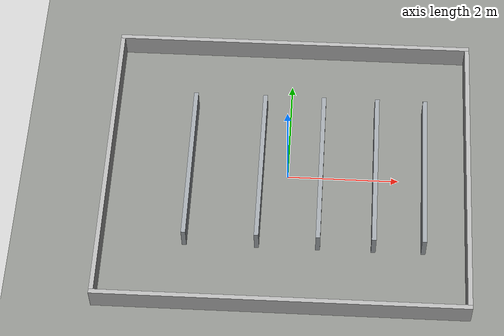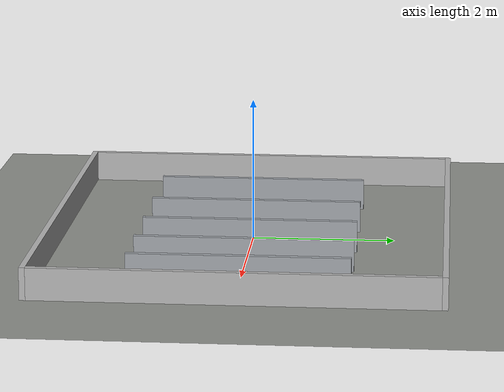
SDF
<?xml version="1.0" ?>
<sdf version="1.8">
  <world name="rosy_gauntlet">
    <physics name="1ms" type="ignored">
      <max_step_size>0.001</max_step_size>
      <real_time_factor>1.0</real_time_factor>
    </physics>

    <plugin filename="gz-sim-physics-system" name="gz::sim::systems::Physics"></plugin>
    <plugin filename="gz-sim-sensors-system" name="gz::sim::systems::Sensors">
      <render_engine>ogre2</render_engine>
    </plugin>
    <plugin filename="gz-sim-user-commands-system" name="gz::sim::systems::UserCommands"></plugin>
    <plugin filename="gz-sim-scene-broadcaster-system" name="gz::sim::systems::SceneBroadcaster"></plugin>
    <plugin filename="gz-sim-imu-system" name="gz::sim::systems::Imu"></plugin>

    <light type="directional" name="sun">
      <cast_shadows>false</cast_shadows>
      <pose>0 0 3 0 0 0</pose>
      <diffuse>1 1 1 1</diffuse>
      <specular>1 1 1 1</specular>
      <attenuation>
        <range>1000</range><constant>1</constant><linear>0</linear><quadratic>0</quadratic>
      </attenuation>
      <direction>0 0 -1</direction>
    </light>

    <model name="ground_plane">
      <static>true</static>
      <link name="ground_link">
        <collision name="ground_collision">
          <geometry><plane><normal>0 0 1</normal><size>14 14</size></plane></geometry>
        </collision>
        <visual name="ground_visual">
          <geometry><plane><normal>0 0 1</normal><size>14 14</size></plane></geometry>
          <material>
            <diffuse>0.55 0.56 0.54 1</diffuse>
            <specular>0.1 0.1 0.1 1</specular>
          </material>
        </visual>
      </link>
    </model>

    <!-- 바깥 벽: 안쪽 6.40 x 5.40 -->
    <model name="wall_south">
      <static>true</static><pose>0 -2.74 0.22 0 0 0</pose>
      <link name="l"><visual name="v"><geometry><box><size>6.56 0.08 0.44</size></box></geometry>
        <material><diffuse>0.7 0.7 0.7 1</diffuse></material></visual>
        <collision name="c"><geometry><box><size>6.56 0.08 0.44</size></box></geometry></collision></link>
    </model>
    <model name="wall_north">
      <static>true</static><pose>0 2.74 0.22 0 0 0</pose>
      <link name="l"><visual name="v"><geometry><box><size>6.56 0.08 0.44</size></box></geometry>
        <material><diffuse>0.7 0.7 0.7 1</diffuse></material></visual>
        <collision name="c"><geometry><box><size>6.56 0.08 0.44</size></box></geometry></collision></link>
    </model>
    <model name="wall_west">
      <static>true</static><pose>-3.24 0 0.22 0 0 0</pose>
      <link name="l"><visual name="v"><geometry><box><size>0.08 5.40 0.44</size></box></geometry>
        <material><diffuse>0.7 0.7 0.7 1</diffuse></material></visual>
        <collision name="c"><geometry><box><size>0.08 5.40 0.44</size></box></geometry></collision></link>
    </model>
    <model name="wall_east">
      <static>true</static><pose>3.24 0 0.22 0 0 0</pose>
      <link name="l"><visual name="v"><geometry><box><size>0.08 5.40 0.44</size></box></geometry>
        <material><diffuse>0.7 0.7 0.7 1</diffuse></material></visual>
        <collision name="c"><geometry><box><size>0.08 5.40 0.44</size></box></geometry></collision></link>
    </model>

    <!-- 칸막이 다섯. 길이 3.0 m, y 는 -1.5 에서 +1.5 까지 -->
    <model name="lane_wall_1">
      <static>true</static><pose>-1.76 0 0.22 0 0 0</pose>
      <link name="l"><visual name="v"><geometry><box><size>0.08 3.00 0.44</size></box></geometry>
        <material><diffuse>0.62 0.64 0.66 1</diffuse></material></visual>
        <collision name="c"><geometry><box><size>0.08 3.00 0.44</size></box></geometry></collision></link>
    </model>
    <model name="lane_wall_2">
      <static>true</static><pose>-0.48 0 0.22 0 0 0</pose>
      <link name="l"><visual name="v"><geometry><box><size>0.08 3.00 0.44</size></box></geometry>
        <material><diffuse>0.62 0.64 0.66 1</diffuse></material></visual>
        <collision name="c"><geometry><box><size>0.08 3.00 0.44</size></box></geometry></collision></link>
    </model>
    <model name="lane_wall_3">
      <static>true</static><pose>0.60 0 0.22 0 0 0</pose>
      <link name="l"><visual name="v"><geometry><box><size>0.08 3.00 0.44</size></box></geometry>
        <material><diffuse>0.62 0.64 0.66 1</diffuse></material></visual>
        <collision name="c"><geometry><box><size>0.08 3.00 0.44</size></box></geometry></collision></link>
    </model>
    <model name="lane_wall_4">
      <static>true</static><pose>1.58 0 0.22 0 0 0</pose>
      <link name="l"><visual name="v"><geometry><box><size>0.08 3.00 0.44</size></box></geometry>
        <material><diffuse>0.62 0.64 0.66 1</diffuse></material></visual>
        <collision name="c"><geometry><box><size>0.08 3.00 0.44</size></box></geometry></collision></link>
    </model>
    <model name="lane_wall_5">
      <static>true</static><pose>2.46 0 0.22 0 0 0</pose>
      <link name="l"><visual name="v"><geometry><box><size>0.08 3.00 0.44</size></box></geometry>
        <material><diffuse>0.62 0.64 0.66 1</diffuse></material></visual>
        <collision name="c"><geometry><box><size>0.08 3.00 0.44</size></box></geometry></collision></link>
    </model>
  </world>
</sdf>
